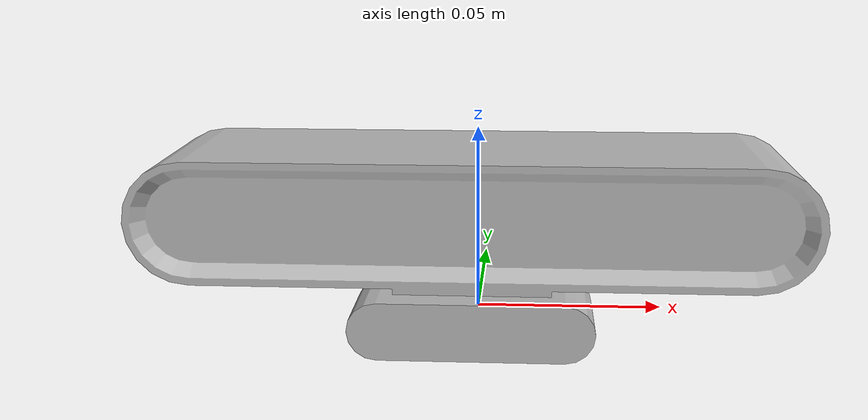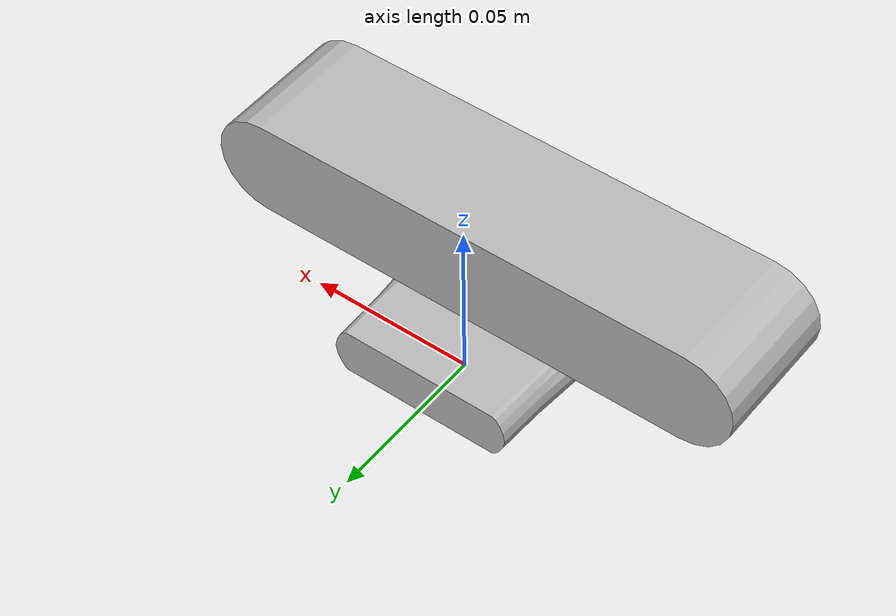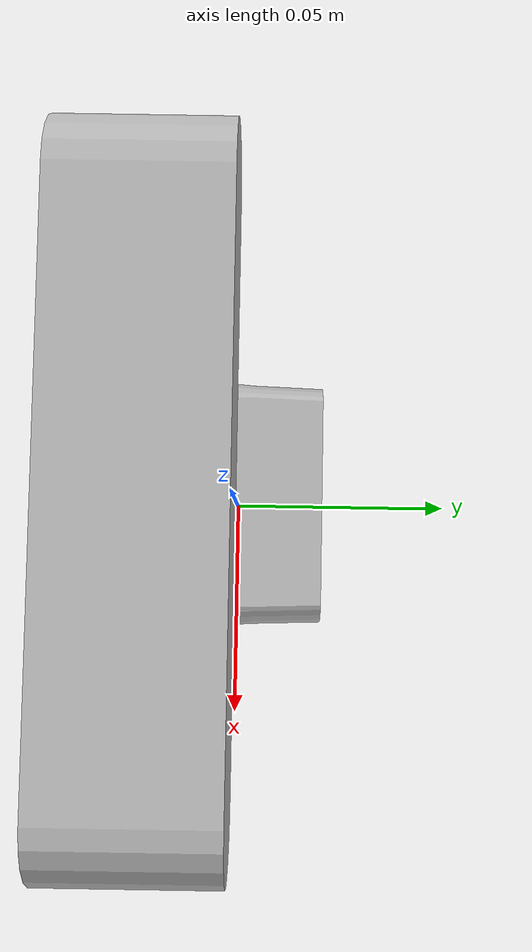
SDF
<?xml version="1.0" ?>
<sdf version="1.6">
  <model name="rgbd_camera">
    <link name="link">
      <pose>0 0 0 0 0 0</pose>
      <inertial>
        <pose>0 -0.01 0.0245 0 0 0</pose>
        <mass>0.3</mass>
        <inertia>
          <ixx>0.000150025</ixx>
          <ixy>0</ixy>
          <ixz>0</ixz>
          <iyy>0.00074065</iyy>
          <iyz>0</iyz>
          <izz>0.0007706249999999999</izz>
        </inertia>
      </inertial>
      <collision name="collision_top">
        <pose>0 -0.02 0.034 0 0 0</pose>
        <geometry>
          <box>
            <size>0.165 0.040 0.030 0 0 0</size>
          </box>
        </geometry>
      </collision>
      <collision name="collision_base">
        <pose>0 -0.010 0.00725 0 0 0</pose>
        <geometry>
          <box>
            <size>0.06 0.060 0.015 0 0 0</size>
          </box>
        </geometry>
      </collision>
      <visual name="visual">
        <geometry>
          <mesh>
            <uri>model://rgbd_camera/meshes/3dCamera.DAE</uri>
          </mesh>
        </geometry>
      </visual>
    </link>
  </model>
</sdf>
